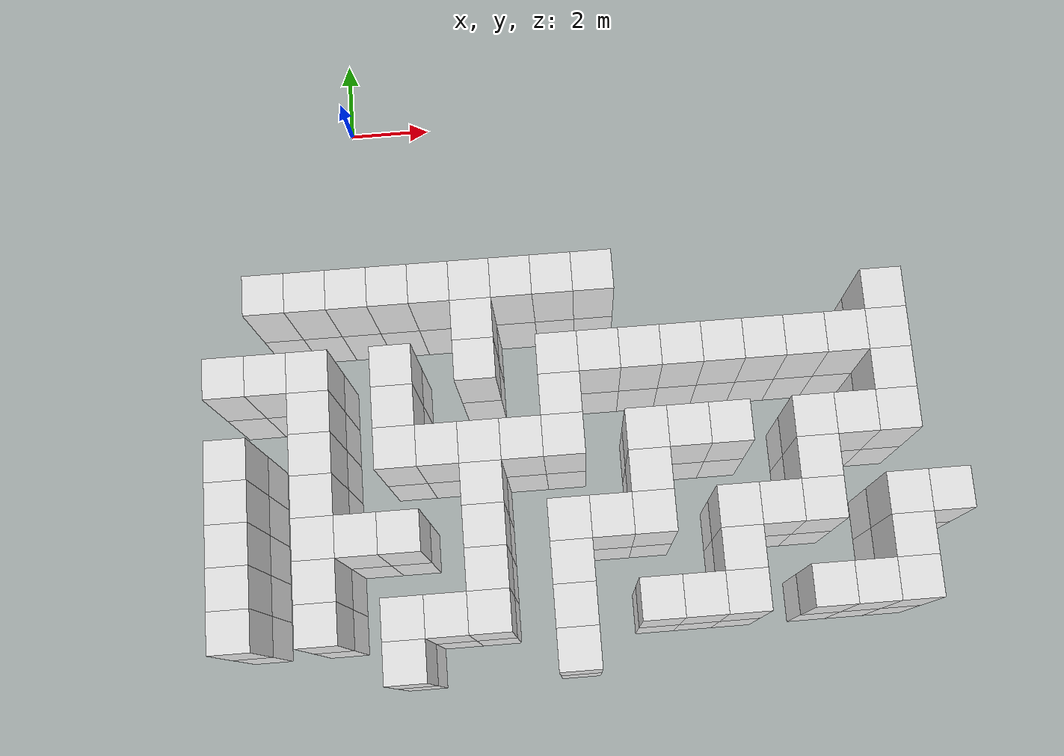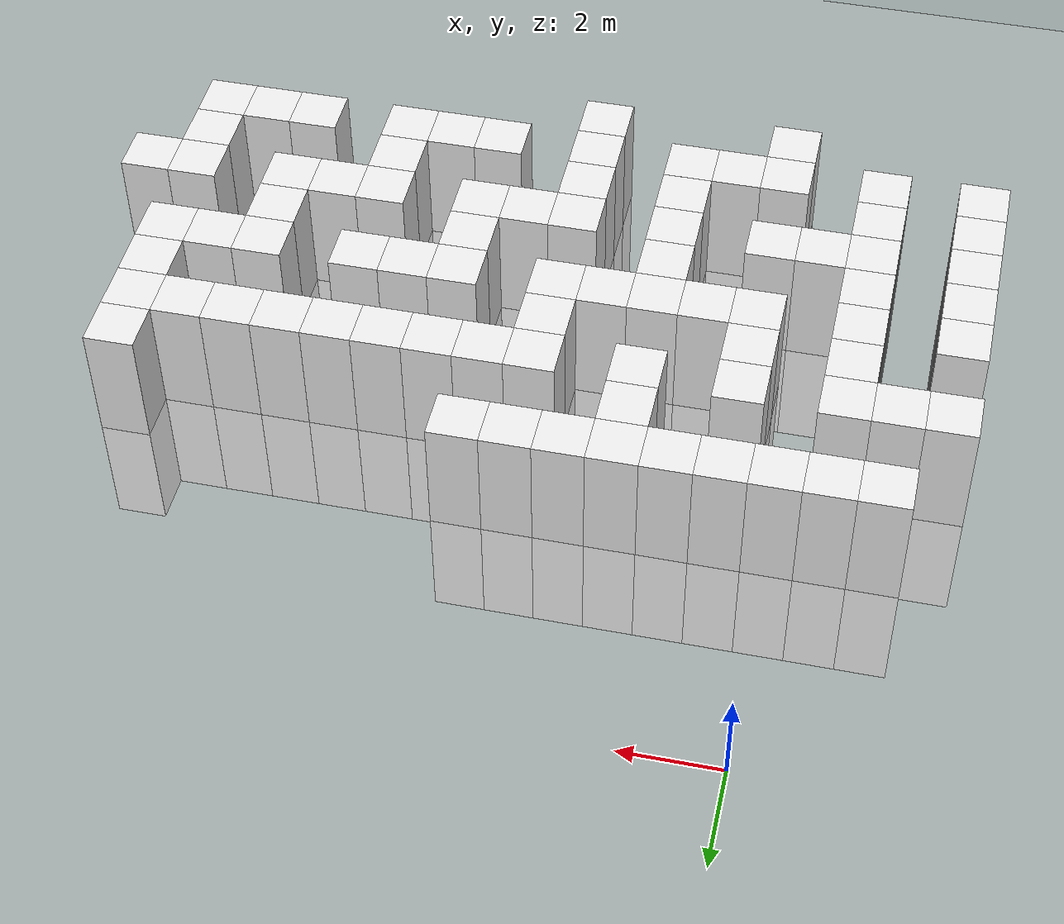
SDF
<sdf version="1.6">
 <world name="default">
  <model name="ground_plane">
   <static>1</static>
   <link name="link">
    <collision name="collision">
     <geometry><plane><normal>0 0 1</normal><size>100 100</size></plane></geometry>
     <surface><friction><ode><mu>100</mu><mu2>50</mu2></ode></friction></surface>
    </collision>
    <visual name="visual">
     <cast_shadows>0</cast_shadows>
     <geometry><plane><normal>0 0 1</normal><size>100 100</size></plane></geometry>
     <material>
      <script><uri>file://media/materials/scripts/gazebo.material</uri><name>Gazebo/Grey</name></script>
     </material>
    </visual>
   </link>
  </model>
  <model name="Unit_box_-2_-5">
   <pose>-2 -5 0 0 0 0</pose>
   <link name="Unit_box_-2_-5_collision">
    <collision name="collision"><geometry><box><size>1 1 5</size></box></geometry></collision>
    <visual name="Unit_box_-2_-5_visual">
     <geometry><box><size>1 1 5</size></box></geometry>
     <material>
      <script><name>Gazebo/White</name><uri>file://media/materials/scripts/gazebo.material</uri></script>
     </material>
    </visual>
   </link>
   <static>1</static>
  </model>
  <model name="Unit_box_-1_-5">
   <pose>-1 -5 0 0 0 0</pose>
   <link name="Unit_box_-1_-5_collision">
    <collision name="collision"><geometry><box><size>1 1 5</size></box></geometry></collision>
    <visual name="Unit_box_-1_-5_visual">
     <geometry><box><size>1 1 5</size></box></geometry>
     <material>
      <script><name>Gazebo/White</name><uri>file://media/materials/scripts/gazebo.material</uri></script>
     </material>
    </visual>
   </link>
   <static>1</static>
  </model>
  <model name="Unit_box_0_-5">
   <pose>0 -5 0 0 0 0</pose>
   <link name="Unit_box_0_-5_collision">
    <collision name="collision"><geometry><box><size>1 1 5</size></box></geometry></collision>
    <visual name="Unit_box_0_-5_visual">
     <geometry><box><size>1 1 5</size></box></geometry>
     <material>
      <script><name>Gazebo/White</name><uri>file://media/materials/scripts/gazebo.material</uri></script>
     </material>
    </visual>
   </link>
   <static>1</static>
  </model>
  <model name="Unit_box_1_-5">
   <pose>1 -5 0 0 0 0</pose>
   <link name="Unit_box_1_-5_collision">
    <collision name="collision"><geometry><box><size>1 1 5</size></box></geometry></collision>
    <visual name="Unit_box_1_-5_visual">
     <geometry><box><size>1 1 5</size></box></geometry>
     <material>
      <script><name>Gazebo/White</name><uri>file://media/materials/scripts/gazebo.material</uri></script>
     </material>
    </visual>
   </link>
   <static>1</static>
  </model>
  <model name="Unit_box_2_-5">
   <pose>2 -5 0 0 0 0</pose>
   <link name="Unit_box_2_-5_collision">
    <collision name="collision"><geometry><box><size>1 1 5</size></box></geometry></collision>
    <visual name="Unit_box_2_-5_visual">
     <geometry><box><size>1 1 5</size></box></geometry>
     <material>
      <script><name>Gazebo/White</name><uri>file://media/materials/scripts/gazebo.material</uri></script>
     </material>
    </visual>
   </link>
   <static>1</static>
  </model>
  <model name="Unit_box_3_-5">
   <pose>3 -5 0 0 0 0</pose>
   <link name="Unit_box_3_-5_collision">
    <collision name="collision"><geometry><box><size>1 1 5</size></box></geometry></collision>
    <visual name="Unit_box_3_-5_visual">
     <geometry><box><size>1 1 5</size></box></geometry>
     <material>
      <script><name>Gazebo/White</name><uri>file://media/materials/scripts/gazebo.material</uri></script>
     </material>
    </visual>
   </link>
   <static>1</static>
  </model>
  <model name="Unit_box_4_-5">
   <pose>4 -5 0 0 0 0</pose>
   <link name="Unit_box_4_-5_collision">
    <collision name="collision"><geometry><box><size>1 1 5</size></box></geometry></collision>
    <visual name="Unit_box_4_-5_visual">
     <geometry><box><size>1 1 5</size></box></geometry>
     <material>
      <script><name>Gazebo/White</name><uri>file://media/materials/scripts/gazebo.material</uri></script>
     </material>
    </visual>
   </link>
   <static>1</static>
  </model>
  <model name="Unit_box_5_-5">
   <pose>5 -5 0 0 0 0</pose>
   <link name="Unit_box_5_-5_collision">
    <collision name="collision"><geometry><box><size>1 1 5</size></box></geometry></collision>
    <visual name="Unit_box_5_-5_visual">
     <geometry><box><size>1 1 5</size></box></geometry>
     <material>
      <script><name>Gazebo/White</name><uri>file://media/materials/scripts/gazebo.material</uri></script>
     </material>
    </visual>
   </link>
   <static>1</static>
  </model>
  <model name="Unit_box_6_-5">
   <pose>6 -5 0 0 0 0</pose>
   <link name="Unit_box_6_-5_collision">
    <collision name="collision"><geometry><box><size>1 1 5</size></box></geometry></collision>
    <visual name="Unit_box_6_-5_visual">
     <geometry><box><size>1 1 5</size></box></geometry>
     <material>
      <script><name>Gazebo/White</name><uri>file://media/materials/scripts/gazebo.material</uri></script>
     </material>
    </visual>
   </link>
   <static>1</static>
  </model>
  <model name="Unit_box_3_-6">
   <pose>3 -6 0 0 0 0</pose>
   <link name="Unit_box_3_-6_collision">
    <collision name="collision"><geometry><box><size>1 1 5</size></box></geometry></collision>
    <visual name="Unit_box_3_-6_visual">
     <geometry><box><size>1 1 5</size></box></geometry>
     <material>
      <script><name>Gazebo/White</name><uri>file://media/materials/scripts/gazebo.material</uri></script>
     </material>
    </visual>
   </link>
   <static>1</static>
  </model>
  <model name="Unit_box_13_-6">
   <pose>13 -6 0 0 0 0</pose>
   <link name="Unit_box_13_-6_collision">
    <collision name="collision"><geometry><box><size>1 1 5</size></box></geometry></collision>
    <visual name="Unit_box_13_-6_visual">
     <geometry><box><size>1 1 5</size></box></geometry>
     <material>
      <script><name>Gazebo/White</name><uri>file://media/materials/scripts/gazebo.material</uri></script>
     </material>
    </visual>
   </link>
   <static>1</static>
  </model>
  <model name="Unit_box_-3_-7">
   <pose>-3 -7 0 0 0 0</pose>
   <link name="Unit_box_-3_-7_collision">
    <collision name="collision"><geometry><box><size>1 1 5</size></box></geometry></collision>
    <visual name="Unit_box_-3_-7_visual">
     <geometry><box><size>1 1 5</size></box></geometry>
     <material>
      <script><name>Gazebo/White</name><uri>file://media/materials/scripts/gazebo.material</uri></script>
     </material>
    </visual>
   </link>
   <static>1</static>
  </model>
  <model name="Unit_box_-2_-7">
   <pose>-2 -7 0 0 0 0</pose>
   <link name="Unit_box_-2_-7_collision">
    <collision name="collision"><geometry><box><size>1 1 5</size></box></geometry></collision>
    <visual name="Unit_box_-2_-7_visual">
     <geometry><box><size>1 1 5</size></box></geometry>
     <material>
      <script><name>Gazebo/White</name><uri>file://media/materials/scripts/gazebo.material</uri></script>
     </material>
    </visual>
   </link>
   <static>1</static>
  </model>
  <model name="Unit_box_-1_-7">
   <pose>-1 -7 0 0 0 0</pose>
   <link name="Unit_box_-1_-7_collision">
    <collision name="collision"><geometry><box><size>1 1 5</size></box></geometry></collision>
    <visual name="Unit_box_-1_-7_visual">
     <geometry><box><size>1 1 5</size></box></geometry>
     <material>
      <script><name>Gazebo/White</name><uri>file://media/materials/scripts/gazebo.material</uri></script>
     </material>
    </visual>
   </link>
   <static>1</static>
  </model>
  <model name="Unit_box_1_-7">
   <pose>1 -7 0 0 0 0</pose>
   <link name="Unit_box_1_-7_collision">
    <collision name="collision"><geometry><box><size>1 1 5</size></box></geometry></collision>
    <visual name="Unit_box_1_-7_visual">
     <geometry><box><size>1 1 5</size></box></geometry>
     <material>
      <script><name>Gazebo/White</name><uri>file://media/materials/scripts/gazebo.material</uri></script>
     </material>
    </visual>
   </link>
   <static>1</static>
  </model>
  <model name="Unit_box_3_-7">
   <pose>3 -7 0 0 0 0</pose>
   <link name="Unit_box_3_-7_collision">
    <collision name="collision"><geometry><box><size>1 1 5</size></box></geometry></collision>
    <visual name="Unit_box_3_-7_visual">
     <geometry><box><size>1 1 5</size></box></geometry>
     <material>
      <script><name>Gazebo/White</name><uri>file://media/materials/scripts/gazebo.material</uri></script>
     </material>
    </visual>
   </link>
   <static>1</static>
  </model>
  <model name="Unit_box_5_-7">
   <pose>5 -7 0 0 0 0</pose>
   <link name="Unit_box_5_-7_collision">
    <collision name="collision"><geometry><box><size>1 1 5</size></box></geometry></collision>
    <visual name="Unit_box_5_-7_visual">
     <geometry><box><size>1 1 5</size></box></geometry>
     <material>
      <script><name>Gazebo/White</name><uri>file://media/materials/scripts/gazebo.material</uri></script>
     </material>
    </visual>
   </link>
   <static>1</static>
  </model>
  <model name="Unit_box_6_-7">
   <pose>6 -7 0 0 0 0</pose>
   <link name="Unit_box_6_-7_collision">
    <collision name="collision"><geometry><box><size>1 1 5</size></box></geometry></collision>
    <visual name="Unit_box_6_-7_visual">
     <geometry><box><size>1 1 5</size></box></geometry>
     <material>
      <script><name>Gazebo/White</name><uri>file://media/materials/scripts/gazebo.material</uri></script>
     </material>
    </visual>
   </link>
   <static>1</static>
  </model>
  <model name="Unit_box_7_-7">
   <pose>7 -7 0 0 0 0</pose>
   <link name="Unit_box_7_-7_collision">
    <collision name="collision"><geometry><box><size>1 1 5</size></box></geometry></collision>
    <visual name="Unit_box_7_-7_visual">
     <geometry><box><size>1 1 5</size></box></geometry>
     <material>
      <script><name>Gazebo/White</name><uri>file://media/materials/scripts/gazebo.material</uri></script>
     </material>
    </visual>
   </link>
   <static>1</static>
  </model>
  <model name="Unit_box_8_-7">
   <pose>8 -7 0 0 0 0</pose>
   <link name="Unit_box_8_-7_collision">
    <collision name="collision"><geometry><box><size>1 1 5</size></box></geometry></collision>
    <visual name="Unit_box_8_-7_visual">
     <geometry><box><size>1 1 5</size></box></geometry>
     <material>
      <script><name>Gazebo/White</name><uri>file://media/materials/scripts/gazebo.material</uri></script>
     </material>
    </visual>
   </link>
   <static>1</static>
  </model>
  <model name="Unit_box_9_-7">
   <pose>9 -7 0 0 0 0</pose>
   <link name="Unit_box_9_-7_collision">
    <collision name="collision"><geometry><box><size>1 1 5</size></box></geometry></collision>
    <visual name="Unit_box_9_-7_visual">
     <geometry><box><size>1 1 5</size></box></geometry>
     <material>
      <script><name>Gazebo/White</name><uri>file://media/materials/scripts/gazebo.material</uri></script>
     </material>
    </visual>
   </link>
   <static>1</static>
  </model>
  <model name="Unit_box_10_-7">
   <pose>10 -7 0 0 0 0</pose>
   <link name="Unit_box_10_-7_collision">
    <collision name="collision"><geometry><box><size>1 1 5</size></box></geometry></collision>
    <visual name="Unit_box_10_-7_visual">
     <geometry><box><size>1 1 5</size></box></geometry>
     <material>
      <script><name>Gazebo/White</name><uri>file://media/materials/scripts/gazebo.material</uri></script>
     </material>
    </visual>
   </link>
   <static>1</static>
  </model>
  <model name="Unit_box_11_-7">
   <pose>11 -7 0 0 0 0</pose>
   <link name="Unit_box_11_-7_collision">
    <collision name="collision"><geometry><box><size>1 1 5</size></box></geometry></collision>
    <visual name="Unit_box_11_-7_visual">
     <geometry><box><size>1 1 5</size></box></geometry>
     <material>
      <script><name>Gazebo/White</name><uri>file://media/materials/scripts/gazebo.material</uri></script>
     </material>
    </visual>
   </link>
   <static>1</static>
  </model>
  <model name="Unit_box_12_-7">
   <pose>12 -7 0 0 0 0</pose>
   <link name="Unit_box_12_-7_collision">
    <collision name="collision"><geometry><box><size>1 1 5</size></box></geometry></collision>
    <visual name="Unit_box_12_-7_visual">
     <geometry><box><size>1 1 5</size></box></geometry>
     <material>
      <script><name>Gazebo/White</name><uri>file://media/materials/scripts/gazebo.material</uri></script>
     </material>
    </visual>
   </link>
   <static>1</static>
  </model>
  <model name="Unit_box_13_-7">
   <pose>13 -7 0 0 0 0</pose>
   <link name="Unit_box_13_-7_collision">
    <collision name="collision"><geometry><box><size>1 1 5</size></box></geometry></collision>
    <visual name="Unit_box_13_-7_visual">
     <geometry><box><size>1 1 5</size></box></geometry>
     <material>
      <script><name>Gazebo/White</name><uri>file://media/materials/scripts/gazebo.material</uri></script>
     </material>
    </visual>
   </link>
   <static>1</static>
  </model>
  <model name="Unit_box_-1_-8">
   <pose>-1 -8 0 0 0 0</pose>
   <link name="Unit_box_-1_-8_collision">
    <collision name="collision"><geometry><box><size>1 1 5</size></box></geometry></collision>
    <visual name="Unit_box_-1_-8_visual">
     <geometry><box><size>1 1 5</size></box></geometry>
     <material>
      <script><name>Gazebo/White</name><uri>file://media/materials/scripts/gazebo.material</uri></script>
     </material>
    </visual>
   </link>
   <static>1</static>
  </model>
  <model name="Unit_box_1_-8">
   <pose>1 -8 0 0 0 0</pose>
   <link name="Unit_box_1_-8_collision">
    <collision name="collision"><geometry><box><size>1 1 5</size></box></geometry></collision>
    <visual name="Unit_box_1_-8_visual">
     <geometry><box><size>1 1 5</size></box></geometry>
     <material>
      <script><name>Gazebo/White</name><uri>file://media/materials/scripts/gazebo.material</uri></script>
     </material>
    </visual>
   </link>
   <static>1</static>
  </model>
  <model name="Unit_box_5_-8">
   <pose>5 -8 0 0 0 0</pose>
   <link name="Unit_box_5_-8_collision">
    <collision name="collision"><geometry><box><size>1 1 5</size></box></geometry></collision>
    <visual name="Unit_box_5_-8_visual">
     <geometry><box><size>1 1 5</size></box></geometry>
     <material>
      <script><name>Gazebo/White</name><uri>file://media/materials/scripts/gazebo.material</uri></script>
     </material>
    </visual>
   </link>
   <static>1</static>
  </model>
  <model name="Unit_box_13_-8">
   <pose>13 -8 0 0 0 0</pose>
   <link name="Unit_box_13_-8_collision">
    <collision name="collision"><geometry><box><size>1 1 5</size></box></geometry></collision>
    <visual name="Unit_box_13_-8_visual">
     <geometry><box><size>1 1 5</size></box></geometry>
     <material>
      <script><name>Gazebo/White</name><uri>file://media/materials/scripts/gazebo.material</uri></script>
     </material>
    </visual>
   </link>
   <static>1</static>
  </model>
  <model name="Unit_box_-3_-9">
   <pose>-3 -9 0 0 0 0</pose>
   <link name="Unit_box_-3_-9_collision">
    <collision name="collision"><geometry><box><size>1 1 5</size></box></geometry></collision>
    <visual name="Unit_box_-3_-9_visual">
     <geometry><box><size>1 1 5</size></box></geometry>
     <material>
      <script><name>Gazebo/White</name><uri>file://media/materials/scripts/gazebo.material</uri></script>
     </material>
    </visual>
   </link>
   <static>1</static>
  </model>
  <model name="Unit_box_-1_-9">
   <pose>-1 -9 0 0 0 0</pose>
   <link name="Unit_box_-1_-9_collision">
    <collision name="collision"><geometry><box><size>1 1 5</size></box></geometry></collision>
    <visual name="Unit_box_-1_-9_visual">
     <geometry><box><size>1 1 5</size></box></geometry>
     <material>
      <script><name>Gazebo/White</name><uri>file://media/materials/scripts/gazebo.material</uri></script>
     </material>
    </visual>
   </link>
   <static>1</static>
  </model>
  <model name="Unit_box_1_-9">
   <pose>1 -9 0 0 0 0</pose>
   <link name="Unit_box_1_-9_collision">
    <collision name="collision"><geometry><box><size>1 1 5</size></box></geometry></collision>
    <visual name="Unit_box_1_-9_visual">
     <geometry><box><size>1 1 5</size></box></geometry>
     <material>
      <script><name>Gazebo/White</name><uri>file://media/materials/scripts/gazebo.material</uri></script>
     </material>
    </visual>
   </link>
   <static>1</static>
  </model>
  <model name="Unit_box_2_-9">
   <pose>2 -9 0 0 0 0</pose>
   <link name="Unit_box_2_-9_collision">
    <collision name="collision"><geometry><box><size>1 1 5</size></box></geometry></collision>
    <visual name="Unit_box_2_-9_visual">
     <geometry><box><size>1 1 5</size></box></geometry>
     <material>
      <script><name>Gazebo/White</name><uri>file://media/materials/scripts/gazebo.material</uri></script>
     </material>
    </visual>
   </link>
   <static>1</static>
  </model>
  <model name="Unit_box_3_-9">
   <pose>3 -9 0 0 0 0</pose>
   <link name="Unit_box_3_-9_collision">
    <collision name="collision"><geometry><box><size>1 1 5</size></box></geometry></collision>
    <visual name="Unit_box_3_-9_visual">
     <geometry><box><size>1 1 5</size></box></geometry>
     <material>
      <script><name>Gazebo/White</name><uri>file://media/materials/scripts/gazebo.material</uri></script>
     </material>
    </visual>
   </link>
   <static>1</static>
  </model>
  <model name="Unit_box_4_-9">
   <pose>4 -9 0 0 0 0</pose>
   <link name="Unit_box_4_-9_collision">
    <collision name="collision"><geometry><box><size>1 1 5</size></box></geometry></collision>
    <visual name="Unit_box_4_-9_visual">
     <geometry><box><size>1 1 5</size></box></geometry>
     <material>
      <script><name>Gazebo/White</name><uri>file://media/materials/scripts/gazebo.material</uri></script>
     </material>
    </visual>
   </link>
   <static>1</static>
  </model>
  <model name="Unit_box_5_-9">
   <pose>5 -9 0 0 0 0</pose>
   <link name="Unit_box_5_-9_collision">
    <collision name="collision"><geometry><box><size>1 1 5</size></box></geometry></collision>
    <visual name="Unit_box_5_-9_visual">
     <geometry><box><size>1 1 5</size></box></geometry>
     <material>
      <script><name>Gazebo/White</name><uri>file://media/materials/scripts/gazebo.material</uri></script>
     </material>
    </visual>
   </link>
   <static>1</static>
  </model>
  <model name="Unit_box_7_-9">
   <pose>7 -9 0 0 0 0</pose>
   <link name="Unit_box_7_-9_collision">
    <collision name="collision"><geometry><box><size>1 1 5</size></box></geometry></collision>
    <visual name="Unit_box_7_-9_visual">
     <geometry><box><size>1 1 5</size></box></geometry>
     <material>
      <script><name>Gazebo/White</name><uri>file://media/materials/scripts/gazebo.material</uri></script>
     </material>
    </visual>
   </link>
   <static>1</static>
  </model>
  <model name="Unit_box_8_-9">
   <pose>8 -9 0 0 0 0</pose>
   <link name="Unit_box_8_-9_collision">
    <collision name="collision"><geometry><box><size>1 1 5</size></box></geometry></collision>
    <visual name="Unit_box_8_-9_visual">
     <geometry><box><size>1 1 5</size></box></geometry>
     <material>
      <script><name>Gazebo/White</name><uri>file://media/materials/scripts/gazebo.material</uri></script>
     </material>
    </visual>
   </link>
   <static>1</static>
  </model>
  <model name="Unit_box_9_-9">
   <pose>9 -9 0 0 0 0</pose>
   <link name="Unit_box_9_-9_collision">
    <collision name="collision"><geometry><box><size>1 1 5</size></box></geometry></collision>
    <visual name="Unit_box_9_-9_visual">
     <geometry><box><size>1 1 5</size></box></geometry>
     <material>
      <script><name>Gazebo/White</name><uri>file://media/materials/scripts/gazebo.material</uri></script>
     </material>
    </visual>
   </link>
   <static>1</static>
  </model>
  <model name="Unit_box_11_-9">
   <pose>11 -9 0 0 0 0</pose>
   <link name="Unit_box_11_-9_collision">
    <collision name="collision"><geometry><box><size>1 1 5</size></box></geometry></collision>
    <visual name="Unit_box_11_-9_visual">
     <geometry><box><size>1 1 5</size></box></geometry>
     <material>
      <script><name>Gazebo/White</name><uri>file://media/materials/scripts/gazebo.material</uri></script>
     </material>
    </visual>
   </link>
   <static>1</static>
  </model>
  <model name="Unit_box_12_-9">
   <pose>12 -9 0 0 0 0</pose>
   <link name="Unit_box_12_-9_collision">
    <collision name="collision"><geometry><box><size>1 1 5</size></box></geometry></collision>
    <visual name="Unit_box_12_-9_visual">
     <geometry><box><size>1 1 5</size></box></geometry>
     <material>
      <script><name>Gazebo/White</name><uri>file://media/materials/scripts/gazebo.material</uri></script>
     </material>
    </visual>
   </link>
   <static>1</static>
  </model>
  <model name="Unit_box_13_-9">
   <pose>13 -9 0 0 0 0</pose>
   <link name="Unit_box_13_-9_collision">
    <collision name="collision"><geometry><box><size>1 1 5</size></box></geometry></collision>
    <visual name="Unit_box_13_-9_visual">
     <geometry><box><size>1 1 5</size></box></geometry>
     <material>
      <script><name>Gazebo/White</name><uri>file://media/materials/scripts/gazebo.material</uri></script>
     </material>
    </visual>
   </link>
   <static>1</static>
  </model>
  <model name="Unit_box_-3_-10">
   <pose>-3 -10 0 0 0 0</pose>
   <link name="Unit_box_-3_-10_collision">
    <collision name="collision"><geometry><box><size>1 1 5</size></box></geometry></collision>
    <visual name="Unit_box_-3_-10_visual">
     <geometry><box><size>1 1 5</size></box></geometry>
     <material>
      <script><name>Gazebo/White</name><uri>file://media/materials/scripts/gazebo.material</uri></script>
     </material>
    </visual>
   </link>
   <static>1</static>
  </model>
  <model name="Unit_box_-1_-10">
   <pose>-1 -10 0 0 0 0</pose>
   <link name="Unit_box_-1_-10_collision">
    <collision name="collision"><geometry><box><size>1 1 5</size></box></geometry></collision>
    <visual name="Unit_box_-1_-10_visual">
     <geometry><box><size>1 1 5</size></box></geometry>
     <material>
      <script><name>Gazebo/White</name><uri>file://media/materials/scripts/gazebo.material</uri></script>
     </material>
    </visual>
   </link>
   <static>1</static>
  </model>
  <model name="Unit_box_3_-10">
   <pose>3 -10 0 0 0 0</pose>
   <link name="Unit_box_3_-10_collision">
    <collision name="collision"><geometry><box><size>1 1 5</size></box></geometry></collision>
    <visual name="Unit_box_3_-10_visual">
     <geometry><box><size>1 1 5</size></box></geometry>
     <material>
      <script><name>Gazebo/White</name><uri>file://media/materials/scripts/gazebo.material</uri></script>
     </material>
    </visual>
   </link>
   <static>1</static>
  </model>
  <model name="Unit_box_7_-10">
   <pose>7 -10 0 0 0 0</pose>
   <link name="Unit_box_7_-10_collision">
    <collision name="collision"><geometry><box><size>1 1 5</size></box></geometry></collision>
    <visual name="Unit_box_7_-10_visual">
     <geometry><box><size>1 1 5</size></box></geometry>
     <material>
      <script><name>Gazebo/White</name><uri>file://media/materials/scripts/gazebo.material</uri></script>
     </material>
    </visual>
   </link>
   <static>1</static>
  </model>
  <model name="Unit_box_11_-10">
   <pose>11 -10 0 0 0 0</pose>
   <link name="Unit_box_11_-10_collision">
    <collision name="collision"><geometry><box><size>1 1 5</size></box></geometry></collision>
    <visual name="Unit_box_11_-10_visual">
     <geometry><box><size>1 1 5</size></box></geometry>
     <material>
      <script><name>Gazebo/White</name><uri>file://media/materials/scripts/gazebo.material</uri></script>
     </material>
    </visual>
   </link>
   <static>1</static>
  </model>
  <model name="Unit_box_-3_-11">
   <pose>-3 -11 0 0 0 0</pose>
   <link name="Unit_box_-3_-11_collision">
    <collision name="collision"><geometry><box><size>1 1 5</size></box></geometry></collision>
    <visual name="Unit_box_-3_-11_visual">
     <geometry><box><size>1 1 5</size></box></geometry>
     <material>
      <script><name>Gazebo/White</name><uri>file://media/materials/scripts/gazebo.material</uri></script>
     </material>
    </visual>
   </link>
   <static>1</static>
  </model>
  <model name="Unit_box_-1_-11">
   <pose>-1 -11 0 0 0 0</pose>
   <link name="Unit_box_-1_-11_collision">
    <collision name="collision"><geometry><box><size>1 1 5</size></box></geometry></collision>
    <visual name="Unit_box_-1_-11_visual">
     <geometry><box><size>1 1 5</size></box></geometry>
     <material>
      <script><name>Gazebo/White</name><uri>file://media/materials/scripts/gazebo.material</uri></script>
     </material>
    </visual>
   </link>
   <static>1</static>
  </model>
  <model name="Unit_box_0_-11">
   <pose>0 -11 0 0 0 0</pose>
   <link name="Unit_box_0_-11_collision">
    <collision name="collision"><geometry><box><size>1 1 5</size></box></geometry></collision>
    <visual name="Unit_box_0_-11_visual">
     <geometry><box><size>1 1 5</size></box></geometry>
     <material>
      <script><name>Gazebo/White</name><uri>file://media/materials/scripts/gazebo.material</uri></script>
     </material>
    </visual>
   </link>
   <static>1</static>
  </model>
  <model name="Unit_box_1_-11">
   <pose>1 -11 0 0 0 0</pose>
   <link name="Unit_box_1_-11_collision">
    <collision name="collision"><geometry><box><size>1 1 5</size></box></geometry></collision>
    <visual name="Unit_box_1_-11_visual">
     <geometry><box><size>1 1 5</size></box></geometry>
     <material>
      <script><name>Gazebo/White</name><uri>file://media/materials/scripts/gazebo.material</uri></script>
     </material>
    </visual>
   </link>
   <static>1</static>
  </model>
  <model name="Unit_box_3_-11">
   <pose>3 -11 0 0 0 0</pose>
   <link name="Unit_box_3_-11_collision">
    <collision name="collision"><geometry><box><size>1 1 5</size></box></geometry></collision>
    <visual name="Unit_box_3_-11_visual">
     <geometry><box><size>1 1 5</size></box></geometry>
     <material>
      <script><name>Gazebo/White</name><uri>file://media/materials/scripts/gazebo.material</uri></script>
     </material>
    </visual>
   </link>
   <static>1</static>
  </model>
  <model name="Unit_box_5_-11">
   <pose>5 -11 0 0 0 0</pose>
   <link name="Unit_box_5_-11_collision">
    <collision name="collision"><geometry><box><size>1 1 5</size></box></geometry></collision>
    <visual name="Unit_box_5_-11_visual">
     <geometry><box><size>1 1 5</size></box></geometry>
     <material>
      <script><name>Gazebo/White</name><uri>file://media/materials/scripts/gazebo.material</uri></script>
     </material>
    </visual>
   </link>
   <static>1</static>
  </model>
  <model name="Unit_box_6_-11">
   <pose>6 -11 0 0 0 0</pose>
   <link name="Unit_box_6_-11_collision">
    <collision name="collision"><geometry><box><size>1 1 5</size></box></geometry></collision>
    <visual name="Unit_box_6_-11_visual">
     <geometry><box><size>1 1 5</size></box></geometry>
     <material>
      <script><name>Gazebo/White</name><uri>file://media/materials/scripts/gazebo.material</uri></script>
     </material>
    </visual>
   </link>
   <static>1</static>
  </model>
  <model name="Unit_box_7_-11">
   <pose>7 -11 0 0 0 0</pose>
   <link name="Unit_box_7_-11_collision">
    <collision name="collision"><geometry><box><size>1 1 5</size></box></geometry></collision>
    <visual name="Unit_box_7_-11_visual">
     <geometry><box><size>1 1 5</size></box></geometry>
     <material>
      <script><name>Gazebo/White</name><uri>file://media/materials/scripts/gazebo.material</uri></script>
     </material>
    </visual>
   </link>
   <static>1</static>
  </model>
  <model name="Unit_box_9_-11">
   <pose>9 -11 0 0 0 0</pose>
   <link name="Unit_box_9_-11_collision">
    <collision name="collision"><geometry><box><size>1 1 5</size></box></geometry></collision>
    <visual name="Unit_box_9_-11_visual">
     <geometry><box><size>1 1 5</size></box></geometry>
     <material>
      <script><name>Gazebo/White</name><uri>file://media/materials/scripts/gazebo.material</uri></script>
     </material>
    </visual>
   </link>
   <static>1</static>
  </model>
  <model name="Unit_box_10_-11">
   <pose>10 -11 0 0 0 0</pose>
   <link name="Unit_box_10_-11_collision">
    <collision name="collision"><geometry><box><size>1 1 5</size></box></geometry></collision>
    <visual name="Unit_box_10_-11_visual">
     <geometry><box><size>1 1 5</size></box></geometry>
     <material>
      <script><name>Gazebo/White</name><uri>file://media/materials/scripts/gazebo.material</uri></script>
     </material>
    </visual>
   </link>
   <static>1</static>
  </model>
  <model name="Unit_box_11_-11">
   <pose>11 -11 0 0 0 0</pose>
   <link name="Unit_box_11_-11_collision">
    <collision name="collision"><geometry><box><size>1 1 5</size></box></geometry></collision>
    <visual name="Unit_box_11_-11_visual">
     <geometry><box><size>1 1 5</size></box></geometry>
     <material>
      <script><name>Gazebo/White</name><uri>file://media/materials/scripts/gazebo.material</uri></script>
     </material>
    </visual>
   </link>
   <static>1</static>
  </model>
  <model name="Unit_box_13_-11">
   <pose>13 -11 0 0 0 0</pose>
   <link name="Unit_box_13_-11_collision">
    <collision name="collision"><geometry><box><size>1 1 5</size></box></geometry></collision>
    <visual name="Unit_box_13_-11_visual">
     <geometry><box><size>1 1 5</size></box></geometry>
     <material>
      <script><name>Gazebo/White</name><uri>file://media/materials/scripts/gazebo.material</uri></script>
     </material>
    </visual>
   </link>
   <static>1</static>
  </model>
  <model name="Unit_box_14_-11">
   <pose>14 -11 0 0 0 0</pose>
   <link name="Unit_box_14_-11_collision">
    <collision name="collision"><geometry><box><size>1 1 5</size></box></geometry></collision>
    <visual name="Unit_box_14_-11_visual">
     <geometry><box><size>1 1 5</size></box></geometry>
     <material>
      <script><name>Gazebo/White</name><uri>file://media/materials/scripts/gazebo.material</uri></script>
     </material>
    </visual>
   </link>
   <static>1</static>
  </model>
  <model name="Unit_box_-3_-12">
   <pose>-3 -12 0 0 0 0</pose>
   <link name="Unit_box_-3_-12_collision">
    <collision name="collision"><geometry><box><size>1 1 5</size></box></geometry></collision>
    <visual name="Unit_box_-3_-12_visual">
     <geometry><box><size>1 1 5</size></box></geometry>
     <material>
      <script><name>Gazebo/White</name><uri>file://media/materials/scripts/gazebo.material</uri></script>
     </material>
    </visual>
   </link>
   <static>1</static>
  </model>
  <model name="Unit_box_-1_-12">
   <pose>-1 -12 0 0 0 0</pose>
   <link name="Unit_box_-1_-12_collision">
    <collision name="collision"><geometry><box><size>1 1 5</size></box></geometry></collision>
    <visual name="Unit_box_-1_-12_visual">
     <geometry><box><size>1 1 5</size></box></geometry>
     <material>
      <script><name>Gazebo/White</name><uri>file://media/materials/scripts/gazebo.material</uri></script>
     </material>
    </visual>
   </link>
   <static>1</static>
  </model>
  <model name="Unit_box_3_-12">
   <pose>3 -12 0 0 0 0</pose>
   <link name="Unit_box_3_-12_collision">
    <collision name="collision"><geometry><box><size>1 1 5</size></box></geometry></collision>
    <visual name="Unit_box_3_-12_visual">
     <geometry><box><size>1 1 5</size></box></geometry>
     <material>
      <script><name>Gazebo/White</name><uri>file://media/materials/scripts/gazebo.material</uri></script>
     </material>
    </visual>
   </link>
   <static>1</static>
  </model>
  <model name="Unit_box_5_-12">
   <pose>5 -12 0 0 0 0</pose>
   <link name="Unit_box_5_-12_collision">
    <collision name="collision"><geometry><box><size>1 1 5</size></box></geometry></collision>
    <visual name="Unit_box_5_-12_visual">
     <geometry><box><size>1 1 5</size></box></geometry>
     <material>
      <script><name>Gazebo/White</name><uri>file://media/materials/scripts/gazebo.material</uri></script>
     </material>
    </visual>
   </link>
   <static>1</static>
  </model>
  <model name="Unit_box_9_-12">
   <pose>9 -12 0 0 0 0</pose>
   <link name="Unit_box_9_-12_collision">
    <collision name="collision"><geometry><box><size>1 1 5</size></box></geometry></collision>
    <visual name="Unit_box_9_-12_visual">
     <geometry><box><size>1 1 5</size></box></geometry>
     <material>
      <script><name>Gazebo/White</name><uri>file://media/materials/scripts/gazebo.material</uri></script>
     </material>
    </visual>
   </link>
   <static>1</static>
  </model>
  <model name="Unit_box_13_-12">
   <pose>13 -12 0 0 0 0</pose>
   <link name="Unit_box_13_-12_collision">
    <collision name="collision"><geometry><box><size>1 1 5</size></box></geometry></collision>
    <visual name="Unit_box_13_-12_visual">
     <geometry><box><size>1 1 5</size></box></geometry>
     <material>
      <script><name>Gazebo/White</name><uri>file://media/materials/scripts/gazebo.material</uri></script>
     </material>
    </visual>
   </link>
   <static>1</static>
  </model>
  <model name="Unit_box_-3_-13">
   <pose>-3 -13 0 0 0 0</pose>
   <link name="Unit_box_-3_-13_collision">
    <collision name="collision"><geometry><box><size>1 1 5</size></box></geometry></collision>
    <visual name="Unit_box_-3_-13_visual">
     <geometry><box><size>1 1 5</size></box></geometry>
     <material>
      <script><name>Gazebo/White</name><uri>file://media/materials/scripts/gazebo.material</uri></script>
     </material>
    </visual>
   </link>
   <static>1</static>
  </model>
  <model name="Unit_box_-1_-13">
   <pose>-1 -13 0 0 0 0</pose>
   <link name="Unit_box_-1_-13_collision">
    <collision name="collision"><geometry><box><size>1 1 5</size></box></geometry></collision>
    <visual name="Unit_box_-1_-13_visual">
     <geometry><box><size>1 1 5</size></box></geometry>
     <material>
      <script><name>Gazebo/White</name><uri>file://media/materials/scripts/gazebo.material</uri></script>
     </material>
    </visual>
   </link>
   <static>1</static>
  </model>
  <model name="Unit_box_1_-13">
   <pose>1 -13 0 0 0 0</pose>
   <link name="Unit_box_1_-13_collision">
    <collision name="collision"><geometry><box><size>1 1 5</size></box></geometry></collision>
    <visual name="Unit_box_1_-13_visual">
     <geometry><box><size>1 1 5</size></box></geometry>
     <material>
      <script><name>Gazebo/White</name><uri>file://media/materials/scripts/gazebo.material</uri></script>
     </material>
    </visual>
   </link>
   <static>1</static>
  </model>
  <model name="Unit_box_2_-13">
   <pose>2 -13 0 0 0 0</pose>
   <link name="Unit_box_2_-13_collision">
    <collision name="collision"><geometry><box><size>1 1 5</size></box></geometry></collision>
    <visual name="Unit_box_2_-13_visual">
     <geometry><box><size>1 1 5</size></box></geometry>
     <material>
      <script><name>Gazebo/White</name><uri>file://media/materials/scripts/gazebo.material</uri></script>
     </material>
    </visual>
   </link>
   <static>1</static>
  </model>
  <model name="Unit_box_3_-13">
   <pose>3 -13 0 0 0 0</pose>
   <link name="Unit_box_3_-13_collision">
    <collision name="collision"><geometry><box><size>1 1 5</size></box></geometry></collision>
    <visual name="Unit_box_3_-13_visual">
     <geometry><box><size>1 1 5</size></box></geometry>
     <material>
      <script><name>Gazebo/White</name><uri>file://media/materials/scripts/gazebo.material</uri></script>
     </material>
    </visual>
   </link>
   <static>1</static>
  </model>
  <model name="Unit_box_5_-13">
   <pose>5 -13 0 0 0 0</pose>
   <link name="Unit_box_5_-13_collision">
    <collision name="collision"><geometry><box><size>1 1 5</size></box></geometry></collision>
    <visual name="Unit_box_5_-13_visual">
     <geometry><box><size>1 1 5</size></box></geometry>
     <material>
      <script><name>Gazebo/White</name><uri>file://media/materials/scripts/gazebo.material</uri></script>
     </material>
    </visual>
   </link>
   <static>1</static>
  </model>
  <model name="Unit_box_7_-13">
   <pose>7 -13 0 0 0 0</pose>
   <link name="Unit_box_7_-13_collision">
    <collision name="collision"><geometry><box><size>1 1 5</size></box></geometry></collision>
    <visual name="Unit_box_7_-13_visual">
     <geometry><box><size>1 1 5</size></box></geometry>
     <material>
      <script><name>Gazebo/White</name><uri>file://media/materials/scripts/gazebo.material</uri></script>
     </material>
    </visual>
   </link>
   <static>1</static>
  </model>
  <model name="Unit_box_8_-13">
   <pose>8 -13 0 0 0 0</pose>
   <link name="Unit_box_8_-13_collision">
    <collision name="collision"><geometry><box><size>1 1 5</size></box></geometry></collision>
    <visual name="Unit_box_8_-13_visual">
     <geometry><box><size>1 1 5</size></box></geometry>
     <material>
      <script><name>Gazebo/White</name><uri>file://media/materials/scripts/gazebo.material</uri></script>
     </material>
    </visual>
   </link>
   <static>1</static>
  </model>
  <model name="Unit_box_9_-13">
   <pose>9 -13 0 0 0 0</pose>
   <link name="Unit_box_9_-13_collision">
    <collision name="collision"><geometry><box><size>1 1 5</size></box></geometry></collision>
    <visual name="Unit_box_9_-13_visual">
     <geometry><box><size>1 1 5</size></box></geometry>
     <material>
      <script><name>Gazebo/White</name><uri>file://media/materials/scripts/gazebo.material</uri></script>
     </material>
    </visual>
   </link>
   <static>1</static>
  </model>
  <model name="Unit_box_11_-13">
   <pose>11 -13 0 0 0 0</pose>
   <link name="Unit_box_11_-13_collision">
    <collision name="collision"><geometry><box><size>1 1 5</size></box></geometry></collision>
    <visual name="Unit_box_11_-13_visual">
     <geometry><box><size>1 1 5</size></box></geometry>
     <material>
      <script><name>Gazebo/White</name><uri>file://media/materials/scripts/gazebo.material</uri></script>
     </material>
    </visual>
   </link>
   <static>1</static>
  </model>
  <model name="Unit_box_12_-13">
   <pose>12 -13 0 0 0 0</pose>
   <link name="Unit_box_12_-13_collision">
    <collision name="collision"><geometry><box><size>1 1 5</size></box></geometry></collision>
    <visual name="Unit_box_12_-13_visual">
     <geometry><box><size>1 1 5</size></box></geometry>
     <material>
      <script><name>Gazebo/White</name><uri>file://media/materials/scripts/gazebo.material</uri></script>
     </material>
    </visual>
   </link>
   <static>1</static>
  </model>
  <model name="Unit_box_13_-13">
   <pose>13 -13 0 0 0 0</pose>
   <link name="Unit_box_13_-13_collision">
    <collision name="collision"><geometry><box><size>1 1 5</size></box></geometry></collision>
    <visual name="Unit_box_13_-13_visual">
     <geometry><box><size>1 1 5</size></box></geometry>
     <material>
      <script><name>Gazebo/White</name><uri>file://media/materials/scripts/gazebo.material</uri></script>
     </material>
    </visual>
   </link>
   <static>1</static>
  </model>
  <model name="Unit_box_1_-14">
   <pose>1 -14 0 0 0 0</pose>
   <link name="Unit_box_1_-14_collision">
    <collision name="collision"><geometry><box><size>1 1 5</size></box></geometry></collision>
    <visual name="Unit_box_1_-14_visual">
     <geometry><box><size>1 1 5</size></box></geometry>
     <material>
      <script><name>Gazebo/White</name><uri>file://media/materials/scripts/gazebo.material</uri></script>
     </material>
    </visual>
   </link>
   <static>1</static>
  </model>
  <model name="Unit_box_5_-14">
   <pose>5 -14 0 0 0 0</pose>
   <link name="Unit_box_5_-14_collision">
    <collision name="collision"><geometry><box><size>1 1 5</size></box></geometry></collision>
    <visual name="Unit_box_5_-14_visual">
     <geometry><box><size>1 1 5</size></box></geometry>
     <material>
      <script><name>Gazebo/White</name><uri>file://media/materials/scripts/gazebo.material</uri></script>
     </material>
    </visual>
   </link>
   <static>1</static>
  </model>
 </world>
</sdf>
